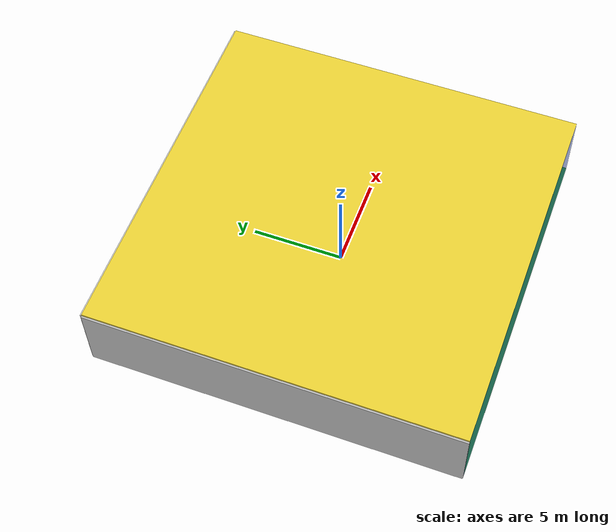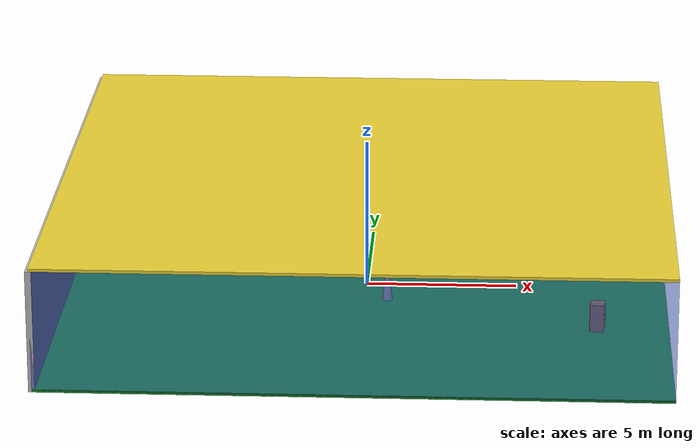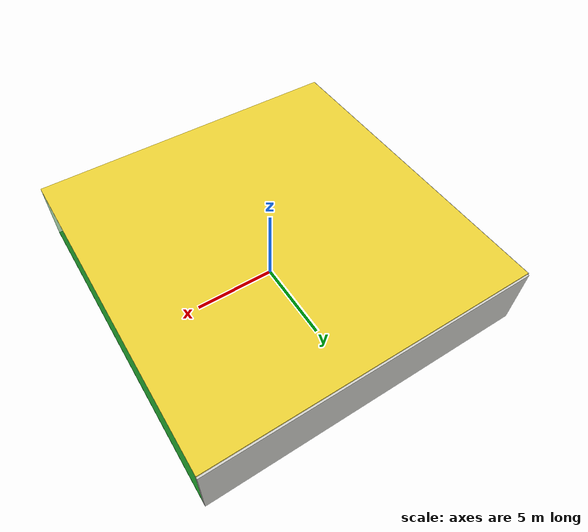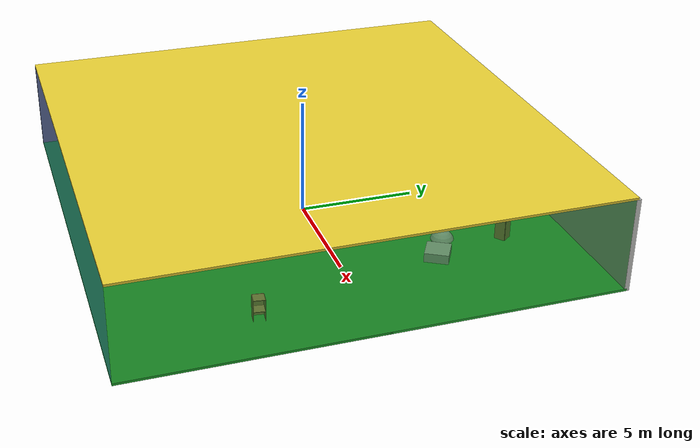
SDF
<sdf version="1.4">
 <world name="default">
  <physics type="ode">
   <max_step_size>0.001</max_step_size>
   <real_time_factor>1</real_time_factor>
   <real_time_update_rate>1000</real_time_update_rate>
   <gravity>0 0 -9.8</gravity>
  </physics>
  <scene><ambient>0.4 0.4 0.4 1</ambient><background>0.7 0.7 0.7 1</background><shadows>1</shadows></scene>
  <model name="Surrounding">
   <static>1</static>
   <link name="Ceiling">
    <collision name="Ceiling_Collision"><geometry><box><size>20 20 0.1</size></box></geometry></collision>
    <visual name="Ceiling_Visual">
     <geometry><box><size>20 20 0.1</size></box></geometry>
     <material>
      <script><uri>file://media/materials/scripts/gazebo.material</uri><name>Gazebo/ZincYellow</name></script>
     </material>
    </visual>
    <pose>0 0 4.05 0 0 0</pose>
   </link>
   <link name="Wall_South">
    <collision name="Wall_South_Collision">
     <geometry><box><size>20 0 4</size></box></geometry>
     <pose>0 0 2 0 -0 0</pose>
    </collision>
    <visual name="Wall_South_Visual">
     <pose>0 0 2 0 -0 0</pose>
     <geometry><box><size>20 0 4</size></box></geometry>
     <material>
      <script><uri>file://media/materials/scripts/gazebo.material</uri><name>Gazebo/BlueTransparent</name></script>
     </material>
    </visual>
    <velocity_decay><linear>0</linear><angular>0</angular></velocity_decay>
    <pose>0 -10 0 0 -0 0</pose>
   </link>
   <link name="Wall_East">
    <collision name="Wall_21_Collision">
     <geometry><box><size>20 0 4</size></box></geometry>
     <pose>0 0 2 0 -0 0</pose>
    </collision>
    <visual name="Wall_21_Visual">
     <pose>0 0 2 0 -0 0</pose>
     <geometry><box><size>20 0 4</size></box></geometry>
     <material>
      <script><uri>file://media/materials/scripts/gazebo.material</uri><name>Gazebo/GreenTransparent</name></script>
     </material>
    </visual>
    <velocity_decay><linear>0</linear><angular>0</angular></velocity_decay>
    <pose>10 0 0 0 -0 1.5708</pose>
   </link>
   <link name="Wall_North">
    <collision name="Wall_22_Collision">
     <geometry><box><size>20 0.2 4</size></box></geometry>
     <pose>0 0 2 0 -0 0</pose>
    </collision>
    <visual name="Wall_22_Visual">
     <pose>0 0 2 0 -0 0</pose>
     <geometry><box><size>20 0.2 4</size></box></geometry>
     <material>
      <script><uri>file://media/materials/scripts/gazebo.material</uri><name>Gazebo/CeilingTiled</name></script>
     </material>
    </visual>
    <velocity_decay><linear>0</linear><angular>0</angular></velocity_decay>
    <pose>0 10 0 0 -0 0</pose>
   </link>
   <link name="Wall_West">
    <collision name="Wall_23_Collision">
     <geometry><box><size>20 0.2 4</size></box></geometry>
     <pose>0 0 2 0 -0 0</pose>
    </collision>
    <visual name="Wall_23_Visual">
     <pose>0 0 2 0 -0 0</pose>
     <geometry><box><size>20 0.2 4</size></box></geometry>
     <material>
      <script><uri>file://media/materials/scripts/gazebo.material</uri><name>Gazebo/JointAnchor</name></script>
     </material>
    </visual>
    <velocity_decay><linear>0</linear><angular>0</angular></velocity_decay>
    <pose>-10 0 0 0 0 -1.5708</pose>
   </link>
   <link name="Ground_link">
    <collision name="collision">
     <pose>0 0 .05 0 -0 0</pose>
     <geometry><box><size>20 20 0.1</size></box></geometry>
    </collision>
    <visual name="visual">
     <pose>0 0 .05 0 -0 0</pose>
     <geometry><box><size>20 20 0.1</size></box></geometry>
     <material>
      <script><uri>file://media/materials/scripts/gazebo.material</uri><name>Gazebo/Green</name></script>
     </material>
    </visual>
   </link>
   <static>1</static>
  </model>
  <spherical_coordinates>
   <surface_model>EARTH_WGS84</surface_model>
   <latitude_deg>0</latitude_deg>
   <longitude_deg>0</longitude_deg>
   <elevation>0</elevation>
   <heading_deg>0</heading_deg>
  </spherical_coordinates>
  <light name="lightball_0" type="diffuse">
   <diffuse>0.8 0.8 0.8 1</diffuse>
   <specular>0.2 0.2 0.2 1</specular>
   <attenuation>
    <range>100</range>
    <constant>0.7</constant>
    <linear>0.01</linear>
    <quadratic>0.001</quadratic>
   </attenuation>
   <direction>-0.5 0.1 -0.9</direction>
   <pose>-0.185779509311 4.73238838021 0.64893382624 0 0 0</pose>
  </light>
  <light name="lightball_1" type="diffuse">
   <diffuse>0.8 0.8 0.8 1</diffuse>
   <specular>0.2 0.2 0.2 1</specular>
   <attenuation>
    <range>100</range>
    <constant>0.7</constant>
    <linear>0.01</linear>
    <quadratic>0.001</quadratic>
   </attenuation>
   <direction>-0.5 0.1 -0.9</direction>
   <pose>-4.46538097845 -3.94564209558 2.55198890556 0 0 0</pose>
  </light>
  <light name="lightball_2" type="diffuse">
   <diffuse>0.8 0.8 0.8 1</diffuse>
   <specular>0.2 0.2 0.2 1</specular>
   <attenuation>
    <range>100</range>
    <constant>0.7</constant>
    <linear>0.01</linear>
    <quadratic>0.001</quadratic>
   </attenuation>
   <direction>-0.5 0.1 -0.9</direction>
   <pose>7.53694198235 1.26384510559 2.53185882106 0 0 0</pose>
  </light>
  <light name="lightball_3" type="diffuse">
   <diffuse>0.8 0.8 0.8 1</diffuse>
   <specular>0.2 0.2 0.2 1</specular>
   <attenuation>
    <range>100</range>
    <constant>0.7</constant>
    <linear>0.01</linear>
    <quadratic>0.001</quadratic>
   </attenuation>
   <direction>-0.5 0.1 -0.9</direction>
   <pose>5.21935758101 -9.00893980699 2.9709247197 0 0 0</pose>
  </light>
  <light name="lightball_4" type="diffuse">
   <diffuse>0.8 0.8 0.8 1</diffuse>
   <specular>0.2 0.2 0.2 1</specular>
   <attenuation>
    <range>100</range>
    <constant>0.7</constant>
    <linear>0.01</linear>
    <quadratic>0.001</quadratic>
   </attenuation>
   <direction>-0.5 0.1 -0.9</direction>
   <pose>4.15161643116 -2.52958415897 3.15311117483 0 0 0</pose>
  </light>
  <light name="lightball_5" type="diffuse">
   <diffuse>0.8 0.8 0.8 1</diffuse>
   <specular>0.2 0.2 0.2 1</specular>
   <attenuation>
    <range>100</range>
    <constant>0.7</constant>
    <linear>0.01</linear>
    <quadratic>0.001</quadratic>
   </attenuation>
   <direction>-0.5 0.1 -0.9</direction>
   <pose>5.67832555353 -9.52491101116 0.740942624129 0 0 0</pose>
  </light>
  <light name="lightball_6" type="diffuse">
   <diffuse>0.8 0.8 0.8 1</diffuse>
   <specular>0.2 0.2 0.2 1</specular>
   <attenuation>
    <range>100</range>
    <constant>0.7</constant>
    <linear>0.01</linear>
    <quadratic>0.001</quadratic>
   </attenuation>
   <direction>-0.5 0.1 -0.9</direction>
   <pose>-7.63756974033 -7.85355850323 3.43018193616 0 0 0</pose>
  </light>
  <light name="lightball_7" type="diffuse">
   <diffuse>0.8 0.8 0.8 1</diffuse>
   <specular>0.2 0.2 0.2 1</specular>
   <attenuation>
    <range>100</range>
    <constant>0.7</constant>
    <linear>0.01</linear>
    <quadratic>0.001</quadratic>
   </attenuation>
   <direction>-0.5 0.1 -0.9</direction>
   <pose>-3.81109756565 -9.96080339174 3.13176827224 0 0 0</pose>
  </light>
  <light name="lightball_8" type="diffuse">
   <diffuse>0.8 0.8 0.8 1</diffuse>
   <specular>0.2 0.2 0.2 1</specular>
   <attenuation>
    <range>100</range>
    <constant>0.7</constant>
    <linear>0.01</linear>
    <quadratic>0.001</quadratic>
   </attenuation>
   <direction>-0.5 0.1 -0.9</direction>
   <pose>2.78688578828 -1.2770759497 3.25869317605 0 0 0</pose>
  </light>
  <light name="lightball_9" type="diffuse">
   <diffuse>0.8 0.8 0.8 1</diffuse>
   <specular>0.2 0.2 0.2 1</specular>
   <attenuation>
    <range>100</range>
    <constant>0.7</constant>
    <linear>0.01</linear>
    <quadratic>0.001</quadratic>
   </attenuation>
   <direction>-0.5 0.1 -0.9</direction>
   <pose>3.88971803909 4.41059437961 2.86662489446 0 0 0</pose>
  </light>
  <include>
   <uri>model://robocup_3Dsim_goal</uri>
   <pose>-7.02034095804 4.18238962196 0 0 0 2.4017448385</pose>
  </include>
  <include>
   <uri>model://textured_shapes</uri>
   <pose>-3.98969121388 3.71898071185 0 0 0 2.15837594349</pose>
  </include>
  <include><uri>model://table</uri><pose>-4.20907015361 7.45910812782 0 0 0 2.6461409229</pose></include>
  <include>
   <uri>model://construction_cone</uri>
   <pose>0.747252019448 -1.68941523844 0 0 0 2.95742619152</pose>
  </include>
  <include>
   <uri>model://textured_shapes</uri>
   <pose>4.32821486641 4.69272414608 0 0 0 1.04645986061</pose>
  </include>
  <include><uri>model://cabinet</uri><pose>4.93925577305 7.12307216296 0 0 0 0.645551318118</pose></include>
  <include><uri>model://cabinet</uri><pose>7.67375759281 -4.11729161856 0 0 0 3.00871303935</pose></include>
 </world>
</sdf>

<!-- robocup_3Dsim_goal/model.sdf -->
<sdf version="1.5">
  <model name="robocup_3d_goal">
    <static>true</static>
    <link name="left_post">
      <pose>0 1.05 0.45 0 0 0</pose>
      <collision name="collision">
        <geometry>
          <cylinder>
            <radius>0.05</radius>
            <length>0.9</length>
          </cylinder>
        </geometry>
      </collision>
      <visual name="visual">
        <geometry>
          <cylinder>
            <radius>0.05</radius>
            <length>0.9</length>
          </cylinder>
        </geometry>
        <material>
          <script>
            <uri>file://media/materials/scripts/gazebo.material</uri>
            <name>Gazebo/ZincYellow</name>
          </script>
        </material>
      </visual>
    </link>
    <link name="left_support_horiz_lower">
      <pose>0.30 1.05 0.01 0 0 0</pose>
      <collision name="collision">
        <geometry>
          <box>
            <size>0.50 0.02 0.02</size>
          </box>
        </geometry>
      </collision>
      <visual name="visual">
        <geometry>
          <box>
            <size>0.50 0.02 0.02</size>
          </box>
        </geometry>
        <material>
          <script>
            <uri>file://media/materials/scripts/gazebo.material</uri>
            <name>Gazebo/White</name>
          </script>
        </material>
      </visual>
    </link>
    <link name="left_support_horiz_upper">
      <pose>0.30 1.05 0.79 0 0 0</pose>
      <collision name="collision">
        <geometry>
          <box>
            <size>0.50 0.02 0.02</size>
          </box>
        </geometry>
      </collision>
      <visual name="visual">
        <geometry>
          <box>
            <size>0.50 0.02 0.02</size>
          </box>
        </geometry>
        <material>
          <script>
            <uri>file://media/materials/scripts/gazebo.material</uri>
            <name>Gazebo/White</name>
          </script>
        </material>
      </visual>
    </link>
    <link name="left_support_vertical">
      <pose>0.56 1.05 0.4 0 1.5708 0</pose>
      <collision name="collision">
        <geometry>
          <box>
            <size>0.80 0.02 0.02</size>
          </box>
        </geometry>
      </collision>
      <visual name="visual">
        <geometry>
          <box>
            <size>0.80 0.02 0.02</size>
          </box>
        </geometry>
        <material>
          <script>
            <uri>file://media/materials/scripts/gazebo.material</uri>
            <name>Gazebo/White</name>
          </script>
        </material>
      </visual>
    </link>
    <link name="right_support_horiz_lower">
      <pose>0.30 -1.05 0.01 0 0 0</pose>
      <collision name="collision">
        <geometry>
          <box>
            <size>0.50 0.02 0.02</size>
          </box>
        </geometry>
      </collision>
      <visual name="visual">
        <geometry>
          <box>
            <size>0.50 0.02 0.02</size>
          </box>
        </geometry>
        <material>
          <script>
            <uri>file://media/materials/scripts/gazebo.material</uri>
            <name>Gazebo/White</name>
          </script>
        </material>
      </visual>
    </link>
    <link name="right_support_horiz_upper">
      <pose>0.30 -1.05 0.79 0 0 0</pose>
      <collision name="collision">
        <geometry>
          <box>
            <size>0.50 0.02 0.02</size>
          </box>
        </geometry>
      </collision>
      <visual name="visual">
        <geometry>
          <box>
            <size>0.50 0.02 0.02</size>
          </box>
        </geometry>
        <material>
          <script>
            <uri>file://media/materials/scripts/gazebo.material</uri>
            <name>Gazebo/White</name>
          </script>
        </material>
      </visual>
    </link>
    <link name="right_support_vertical">
      <pose>0.56 -1.05 0.4 0 1.5708 0</pose>
      <collision name="collision">
        <geometry>
          <box>
            <size>0.80 0.02 0.02</size>
          </box>
        </geometry>
      </collision>
      <visual name="visual">
        <geometry>
          <box>
            <size>0.80 0.02 0.02</size>
          </box>
        </geometry>
        <material>
          <script>
            <uri>file://media/materials/scripts/gazebo.material</uri>
            <name>Gazebo/White</name>
          </script>
        </material>
      </visual>
    </link>
    <link name="center_support_horiz_lower">
      <pose>0.56 0 0.01 0 1.5708 0</pose>
      <collision name="collision">
        <geometry>
          <box>
            <size>0.02 2.08 0.02</size>
          </box>
        </geometry>
      </collision>
      <visual name="visual">
        <geometry>
          <box>
            <size>0.02 2.08 0.02</size>
          </box>
        </geometry>
        <material>
          <script>
            <uri>file://media/materials/scripts/gazebo.material</uri>
            <name>Gazebo/White</name>
          </script>
        </material>
      </visual>
    </link>
    <link name="center_support_horiz_upper">
      <pose>0.56 0 0.79 0 1.5708 0</pose>
      <collision name="collision">
        <geometry>
          <box>
            <size>0.02 2.08 0.02</size>
          </box>
        </geometry>
      </collision>
      <visual name="visual">
        <geometry>
          <box>
            <size>0.02 2.08 0.02</size>
          </box>
        </geometry>
        <material>
          <script>
            <uri>file://media/materials/scripts/gazebo.material</uri>
            <name>Gazebo/White</name>
          </script>
        </material>
      </visual>
    </link>
    <link name="right_post">
      <pose>0 -1.05 0.45 0 0 0</pose>
      <collision name="collision">
        <geometry>
          <cylinder>
            <radius>0.05</radius>
            <length>0.9</length>
          </cylinder>
        </geometry>
      </collision>
      <visual name="visual">
        <geometry>
          <cylinder>
            <radius>0.05</radius>
            <length>0.9</length>
          </cylinder>
        </geometry>
        <material>
          <script>
            <uri>file://media/materials/scripts/gazebo.material</uri>
            <name>Gazebo/ZincYellow</name>
          </script>
        </material>
      </visual>
    </link>
    <link name="crossbar">
      <pose>0 0 0.85 1.57 1.57 0</pose>
      <collision name="collision">
        <geometry>
          <cylinder>
            <radius>0.05</radius>
            <length>2.0</length>
          </cylinder>
        </geometry>
      </collision>
      <visual name="visual">
        <geometry>
          <cylinder>
            <radius>0.05</radius>
            <length>2.0</length>
          </cylinder>
        </geometry>
        <material>
          <script>
            <uri>file://media/materials/scripts/gazebo.material</uri>
            <name>Gazebo/ZincYellow</name>
          </script>
        </material>
      </visual>
    </link>
    <link name="center_net">
      <pose>0.56 0 0.40 0 0 0</pose>
      <collision name="collision">
        <geometry>
          <box>
            <size>0.01 2.1 0.80</size>
          </box>
        </geometry>
      </collision>
      <visual name="visual">
        <geometry>
          <box>
            <size>0.01 2.1 0.80</size>
          </box>
        </geometry>
        <material>
          <script>
            <uri>model://../model_source/models/robocup09_spl_field/materials/scripts/</uri>
            <uri>model://../model_source/models/robocup09_spl_field/materials/textures/</uri>
            <name>RoboCup/Net</name>
          </script>
        </material>
      </visual>
    </link>
    <link name="left_net">
      <pose>0.30 1.05 0.40 0 0 0</pose>
      <collision name="collision">
        <geometry>
          <box>
            <size>0.50 0.01 0.76</size>
          </box>
        </geometry>
      </collision>
      <visual name="visual">
        <geometry>
          <box>
            <size>0.50 0.01 0.76</size>
          </box>
        </geometry>
        <material>
          <script>
            <uri>model://../model_source/models/robocup09_spl_field/materials/scripts/</uri>
            <uri>model://../model_source/models/robocup09_spl_field/materials/textures/</uri>
            <name>RoboCup/Net</name>
          </script>
        </material>
      </visual>
    </link>
    <link name="right_net">
      <pose>0.30 -1.05 0.40 0 0 0</pose>
      <collision name="collision">
        <geometry>
          <box>
            <size>0.50 0.01 0.76</size>
          </box>
        </geometry>
      </collision>
      <visual name="visual">
        <geometry>
          <box>
            <size>0.50 0.01 0.76</size>
          </box>
        </geometry>
        <material>
          <script>
            <uri>model://../model_source/models/robocup09_spl_field/materials/scripts/</uri>
            <uri>model://../model_source/models/robocup09_spl_field/materials/textures/</uri>
            <name>RoboCup/Net</name>
          </script>
        </material>
      </visual>
    </link>
  </model>
</sdf>

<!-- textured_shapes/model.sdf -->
<sdf version="1.6">
  <model name="textured_shapes">
    <pose>0 0 0.5 0 0 0</pose>
    <link name="box">
      <pose>0 -1.5 0 0 0 0</pose>
      <collision name="collision">
        <geometry>
          <box>
            <size>1 1 1</size>
          </box>
        </geometry>
      </collision>
      <visual name="visual">
        <geometry>
          <box>
            <size>1 1 1</size>
          </box>
        </geometry>
        <material>
          <script>
            <uri>model://../model_source/models/textured_shapes/materials/scripts</uri>
            <uri>model://../model_source/models/textured_shapes/materials/textures</uri>
            <name>TexturedShape/Squares</name>
          </script>
        </material>
      </visual>
    </link>
    <link name="sphere">
      <collision name="collision">
        <geometry>
          <sphere>
            <radius>0.5</radius>
          </sphere>
        </geometry>
      </collision>
      <visual name="visual">
        <geometry>
          <sphere>
            <radius>0.5</radius>
          </sphere>
        </geometry>
        <material>
          <script>
            <uri>model://../model_source/models/textured_shapes/materials/scripts</uri>
            <uri>model://../model_source/models/textured_shapes/materials/textures</uri>
            <name>TexturedShape/Squares</name>
          </script>
        </material>
      </visual>
    </link>
    <link name="cylinder">
      <pose>0 1.5 0 0 0 0</pose>
      <collision name="collision">
        <geometry>
          <cylinder>
            <radius>0.5</radius>
            <length>1</length>
          </cylinder>
        </geometry>
      </collision>
      <visual name="visual">
        <geometry>
          <cylinder>
            <radius>0.5</radius>
            <length>1</length>
          </cylinder>
        </geometry>
        <material>
          <script>
            <uri>model://../model_source/models/textured_shapes/materials/scripts</uri>
            <uri>model://../model_source/models/textured_shapes/materials/textures</uri>
            <name>TexturedShape/Squares</name>
          </script>
        </material>
      </visual>
    </link>
  </model>
</sdf>

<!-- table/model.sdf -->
<sdf version="1.5">
  <model name="table">
    <static>true</static>
    <link name="link">
      <collision name="surface">
        <pose>0 0 1.0 0 0 0</pose>
        <geometry>
          <box>
            <size>1.5 0.8 0.03</size>
          </box>
        </geometry>
        <surface>
          <friction>
            <ode>
              <mu>0.6</mu>
              <mu2>0.6</mu2>
            </ode>
          </friction>
        </surface>
      </collision>
      <visual name="visual1">
        <pose>0 0 1.0 0 0 0</pose>
        <geometry>
          <box>
            <size>1.5 0.8 0.03</size>
          </box>
        </geometry>
        <material>
          <script>
            <uri>model://media/materials/scripts/gazebo.material</uri>
            <name>Gazebo/Wood</name>
          </script>
        </material>
      </visual>
      <collision name="front_left_leg">
        <pose>0.68 0.38 0.5 0 0 0</pose>
        <geometry>
          <cylinder>
            <radius>0.02</radius>
            <length>1.0</length>
          </cylinder>
        </geometry>
      </collision>
      <visual name="front_left_leg">
        <pose>0.68 0.38 0.5 0 0 0</pose>
        <geometry>
          <cylinder>
            <radius>0.02</radius>
            <length>1.0</length>
          </cylinder>
        </geometry>
        <material>
          <script>
            <uri>model://media/materials/scripts/gazebo.material</uri>
            <name>Gazebo/Grey</name>
          </script>
        </material>
      </visual>
      <collision name="front_right_leg">
        <pose>0.68 -0.38 0.5 0 0 0</pose>
        <geometry>
          <cylinder>
            <radius>0.02</radius>
            <length>1.0</length>
          </cylinder>
        </geometry>
      </collision>
      <visual name="front_right_leg">
        <pose>0.68 -0.38 0.5 0 0 0</pose>
        <geometry>
          <cylinder>
            <radius>0.02</radius>
            <length>1.0</length>
          </cylinder>
        </geometry>
        <material>
          <script>
            <uri>model://media/materials/scripts/gazebo.material</uri>
            <name>Gazebo/Grey</name>
          </script>
        </material>
      </visual>
      <collision name="back_right_leg">
        <pose>-0.68 -0.38 0.5 0 0 0</pose>
        <geometry>
          <cylinder>
            <radius>0.02</radius>
            <length>1.0</length>
          </cylinder>
        </geometry>
      </collision>
      <visual name="back_right_leg">
        <pose>-0.68 -0.38 0.5 0 0 0</pose>
        <geometry>
          <cylinder>
            <radius>0.02</radius>
            <length>1.0</length>
          </cylinder>
        </geometry>
        <material>
          <script>
            <uri>model://media/materials/scripts/gazebo.material</uri>
            <name>Gazebo/Grey</name>
          </script>
        </material>
      </visual>
      <collision name="back_left_leg">
        <pose>-0.68 0.38 0.5 0 0 0</pose>
        <geometry>
          <cylinder>
            <radius>0.02</radius>
            <length>1.0</length>
          </cylinder>
        </geometry>
      </collision>
      <visual name="back_left_leg">
        <pose>-0.68 0.38 0.5 0 0 0</pose>
        <geometry>
          <cylinder>
            <radius>0.02</radius>
            <length>1.0</length>
          </cylinder>
        </geometry>
        <material>
          <script>
            <uri>model://media/materials/scripts/gazebo.material</uri>
            <name>Gazebo/Grey</name>
          </script>
        </material>
      </visual>
    </link>
  </model>
</sdf>

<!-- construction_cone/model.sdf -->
<sdf version="1.5">
  <model name="Construction Cone">
    <link name="link">
      <collision name="collision">
        <geometry>
          <mesh>
            <scale>10 10 10</scale>
            <uri>file://isr-testbed/construction_cone/meshes/construction_cone.dae</uri>
          </mesh>
        </geometry>
      </collision>
      <visual name="visual">
        <geometry>
          <mesh>
            <scale>10 10 10</scale>
            <uri>file://isr-testbed/construction_cone/meshes/construction_cone.dae</uri>
          </mesh>
        </geometry>
      </visual>
    </link>
  </model>
</sdf>

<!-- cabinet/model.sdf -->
<sdf version="1.5">
  <model name="cabinet">
    <static>true</static>
    <link name="cabinet_bottom_plate">
      <inertial>
        <pose>0 0 -1 0 0 0</pose>
        <inertia>
          <ixx>2.050000</ixx>
          <ixy>0</ixy>
          <ixz>0</ixz>
          <iyy>2.050000</iyy>
          <iyz>0</iyz>
          <izz>2.050000</izz>
        </inertia>
        <mass>25.000000</mass>
      </inertial>
      <collision name="cabinet_bottom_plate_geom">
        <pose>0 0 0.010000 0 0 0</pose>
        <geometry>
          <box>
            <size>0.450000 0.450000 0.020000</size>
          </box>
        </geometry>
      </collision>
      <visual name="cabinet_bottom_plate_geom_visual">
        <pose>0 0 0.010000 0 0 0</pose>
        <geometry>
          <box>
            <size>0.450000 0.450000 0.020000</size>
          </box>
        </geometry>
        <material>
          <script>
            <uri>model://media/materials/scripts/gazebo.material</uri>
            <name>Gazebo/Wood</name>
          </script>
        </material>
      </visual>
      <collision name="cabinet_bottom_plate_geom_cabinet_back_plate">
        <pose>0.235000 0 0.510000 0 0 0</pose>
        <geometry>
          <box>
            <size>0.020000 0.450000 1.020000</size>
          </box>
        </geometry>
      </collision>
      <visual name="cabinet_bottom_plate_geom_cabinet_back_plate_visual">
        <pose>0.235000 0 0.510000 0 0 0</pose>
        <geometry>
          <box>
            <size>0.020000 0.450000 1.020000</size>
          </box>
        </geometry>
        <material>
          <script>
            <uri>model://media/materials/scripts/gazebo.material</uri>
            <name>Gazebo/Wood</name>
          </script>
        </material>
      </visual>
      <collision name="cabinet_bottom_plate_geom_cabinet_left_plate">
        <pose>0 0.235000 0.510000 0 0 0</pose>
        <geometry>
          <box>
            <size>0.450000 0.020000 1.020000</size>
          </box>
        </geometry>
      </collision>
      <visual name="cabinet_bottom_plate_geom_cabinet_left_plate_visual">
        <pose>0 0.235000 0.510000 0 0 0</pose>
        <geometry>
          <box>
            <size>0.450000 0.020000 1.020000</size>
          </box>
        </geometry>
        <material>
          <script>
            <uri>model://media/materials/scripts/gazebo.material</uri>
            <name>Gazebo/Wood</name>
          </script>
        </material>
      </visual>
      <collision name="cabinet_bottom_plate_geom_cabinet_middle_plate">
        <pose>0 0 0.510000 0 0 0</pose>
        <geometry>
          <box>
            <size>0.450000 0.450000 0.020000</size>
          </box>
        </geometry>
      </collision>
      <visual name="cabinet_bottom_plate_geom_cabinet_middle_plate_visual">
        <pose>0 0 0.510000 0 0 0</pose>
        <geometry>
          <box>
            <size>0.450000 0.450000 0.020000</size>
          </box>
        </geometry>
        <material>
          <script>
            <uri>model://media/materials/scripts/gazebo.material</uri>
            <name>Gazebo/Wood</name>
          </script>
        </material>
      </visual>
      <collision name="cabinet_bottom_plate_geom_cabinet_right_plate">
        <pose>0 -0.235000 0.510000 0 0 0</pose>
        <geometry>
          <box>
            <size>0.450000 0.020000 1.020000</size>
          </box>
        </geometry>
      </collision>
      <visual name="cabinet_bottom_plate_geom_cabinet_right_plate_visual">
        <pose>0 -0.235000 0.510000 0 0 0</pose>
        <geometry>
          <box>
            <size>0.450000 0.020000 1.020000</size>
          </box>
        </geometry>
        <material>
          <script>
            <uri>model://media/materials/scripts/gazebo.material</uri>
            <name>Gazebo/Wood</name>
          </script>
        </material>
      </visual>
      <collision name="cabinet_bottom_plate_geom_cabinet_top_plate">
        <pose>0 0 1.010000 0 0 0</pose>
        <geometry>
          <box>
            <size>0.450000 0.450000 0.020000</size>
          </box>
        </geometry>
      </collision>
      <visual name="cabinet_bottom_plate_geom_cabinet_top_plate_visual">
        <pose>0 0 1.010000 0 0 0</pose>
        <geometry>
          <box>
            <size>0.450000 0.450000 0.020000</size>
          </box>
        </geometry>
        <material>
          <script>
            <uri>model://media/materials/scripts/gazebo.material</uri>
            <name>Gazebo/Wood</name>
          </script>
        </material>
      </visual>
    </link>
  </model>
</sdf>
